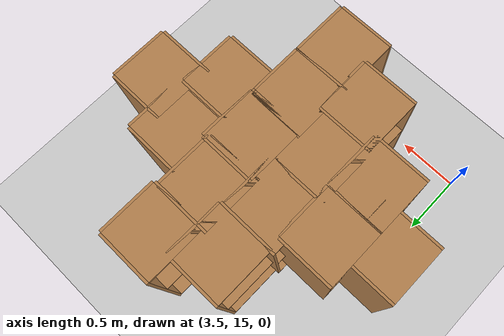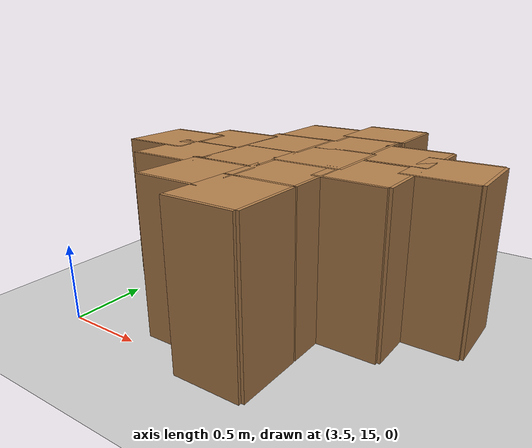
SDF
<sdf version="1.6">
 <world name="default">
  <light name="sun" type="directional">
   <pose>0 0 10 0 -0 0</pose>
   <diffuse>0.8 0.8 0.8 1</diffuse>
   <specular>0.2 0.2 0.2 1</specular>
   <attenuation>
    <range>1000</range>
    <constant>0.9</constant>
    <linear>0.01</linear>
    <quadratic>0.001</quadratic>
   </attenuation>
   <direction>-0.5 0.1 -0.9</direction>
  </light>
  <model name="ground_plane">
   <static>1</static>
   <link name="link">
    <collision name="collision">
     <geometry><plane><normal>0 0 1</normal><size>100 100</size></plane></geometry>
     <surface><friction><ode><mu>100</mu><mu2>50</mu2></ode></friction></surface>
    </collision>
    <visual name="visual">
     <cast_shadows>0</cast_shadows>
     <geometry><plane><normal>0 0 1</normal><size>100 100</size></plane></geometry>
     <material>
      <script><uri>file://media/materials/scripts/gazebo.material</uri><name>Gazebo/Grey</name></script>
     </material>
    </visual>
   </link>
  </model>
  <gravity>0 0 -9.8</gravity>
  <magnetic_field>6e-06 2.3e-05 -4.2e-05</magnetic_field>
  <atmosphere type="adiabatic"/>
  <physics name="default_physics" default="0" type="ode">
   <max_step_size>0.001</max_step_size>
   <real_time_factor>1</real_time_factor>
   <real_time_update_rate>1000</real_time_update_rate>
  </physics>
  <scene><ambient>0.4 0.4 0.4 1</ambient><background>0.7 0.7 0.7 1</background><shadows>1</shadows></scene>
  <audio><device>default</device></audio>
  <spherical_coordinates>
   <surface_model>EARTH_WGS84</surface_model>
   <latitude_deg>0</latitude_deg>
   <longitude_deg>0</longitude_deg>
   <elevation>0</elevation>
   <heading_deg>0</heading_deg>
  </spherical_coordinates>
  <model name="cabinet">
   <static>1</static>
   <link name="cabinet_bottom_plate">
    <inertial>
     <pose>0 0 -1 0 -0 0</pose>
     <inertia><ixx>2.05</ixx><ixy>0</ixy><ixz>0</ixz><iyy>2.05</iyy><iyz>0</iyz><izz>2.05</izz></inertia>
     <mass>25</mass>
    </inertial>
    <collision name="cabinet_bottom_plate_geom">
     <pose>0 0 0.01 0 -0 0</pose>
     <geometry><box><size>0.45 0.45 0.02</size></box></geometry>
    </collision>
    <visual name="cabinet_bottom_plate_geom_visual">
     <pose>0 0 0.01 0 -0 0</pose>
     <geometry><box><size>0.45 0.45 0.02</size></box></geometry>
     <material>
      <script><uri>file://media/materials/scripts/gazebo.material</uri><name>Gazebo/Wood</name></script>
     </material>
    </visual>
    <collision name="cabinet_bottom_plate_geom_cabinet_back_plate">
     <pose>0.235 0 0.51 0 -0 0</pose>
     <geometry><box><size>0.02 0.45 1.02</size></box></geometry>
    </collision>
    <visual name="cabinet_bottom_plate_geom_cabinet_back_plate_visual">
     <pose>0.235 0 0.51 0 -0 0</pose>
     <geometry><box><size>0.02 0.45 1.02</size></box></geometry>
     <material>
      <script><uri>file://media/materials/scripts/gazebo.material</uri><name>Gazebo/Wood</name></script>
     </material>
    </visual>
    <collision name="cabinet_bottom_plate_geom_cabinet_left_plate">
     <pose>0 0.235 0.51 0 -0 0</pose>
     <geometry><box><size>0.45 0.02 1.02</size></box></geometry>
    </collision>
    <visual name="cabinet_bottom_plate_geom_cabinet_left_plate_visual">
     <pose>0 0.235 0.51 0 -0 0</pose>
     <geometry><box><size>0.45 0.02 1.02</size></box></geometry>
     <material>
      <script><uri>file://media/materials/scripts/gazebo.material</uri><name>Gazebo/Wood</name></script>
     </material>
    </visual>
    <collision name="cabinet_bottom_plate_geom_cabinet_middle_plate">
     <pose>0 0 0.51 0 -0 0</pose>
     <geometry><box><size>0.45 0.45 0.02</size></box></geometry>
    </collision>
    <visual name="cabinet_bottom_plate_geom_cabinet_middle_plate_visual">
     <pose>0 0 0.51 0 -0 0</pose>
     <geometry><box><size>0.45 0.45 0.02</size></box></geometry>
     <material>
      <script><uri>file://media/materials/scripts/gazebo.material</uri><name>Gazebo/Wood</name></script>
     </material>
    </visual>
    <collision name="cabinet_bottom_plate_geom_cabinet_right_plate">
     <pose>0 -0.235 0.51 0 -0 0</pose>
     <geometry><box><size>0.45 0.02 1.02</size></box></geometry>
    </collision>
    <visual name="cabinet_bottom_plate_geom_cabinet_right_plate_visual">
     <pose>0 -0.235 0.51 0 -0 0</pose>
     <geometry><box><size>0.45 0.02 1.02</size></box></geometry>
     <material>
      <script><uri>file://media/materials/scripts/gazebo.material</uri><name>Gazebo/Wood</name></script>
     </material>
    </visual>
    <collision name="cabinet_bottom_plate_geom_cabinet_top_plate">
     <pose>0 0 1.01 0 -0 0</pose>
     <geometry><box><size>0.45 0.45 0.02</size></box></geometry>
    </collision>
    <visual name="cabinet_bottom_plate_geom_cabinet_top_plate_visual">
     <pose>0 0 1.01 0 -0 0</pose>
     <geometry><box><size>0.45 0.45 0.02</size></box></geometry>
     <material>
      <script><uri>file://media/materials/scripts/gazebo.material</uri><name>Gazebo/Wood</name></script>
     </material>
    </visual>
   </link>
   <pose>4.67443 15.1428 0 0 -0 0</pose>
  </model>
  <model name="cabinet_0">
   <static>1</static>
   <link name="cabinet_bottom_plate">
    <inertial>
     <pose>0 0 -1 0 -0 0</pose>
     <inertia><ixx>2.05</ixx><ixy>0</ixy><ixz>0</ixz><iyy>2.05</iyy><iyz>0</iyz><izz>2.05</izz></inertia>
     <mass>25</mass>
    </inertial>
    <collision name="cabinet_bottom_plate_geom">
     <pose>0 0 0.01 0 -0 0</pose>
     <geometry><box><size>0.45 0.45 0.02</size></box></geometry>
    </collision>
    <visual name="cabinet_bottom_plate_geom_visual">
     <pose>0 0 0.01 0 -0 0</pose>
     <geometry><box><size>0.45 0.45 0.02</size></box></geometry>
     <material>
      <script><uri>file://media/materials/scripts/gazebo.material</uri><name>Gazebo/Wood</name></script>
     </material>
    </visual>
    <collision name="cabinet_bottom_plate_geom_cabinet_back_plate">
     <pose>0.235 0 0.51 0 -0 0</pose>
     <geometry><box><size>0.02 0.45 1.02</size></box></geometry>
    </collision>
    <visual name="cabinet_bottom_plate_geom_cabinet_back_plate_visual">
     <pose>0.235 0 0.51 0 -0 0</pose>
     <geometry><box><size>0.02 0.45 1.02</size></box></geometry>
     <material>
      <script><uri>file://media/materials/scripts/gazebo.material</uri><name>Gazebo/Wood</name></script>
     </material>
    </visual>
    <collision name="cabinet_bottom_plate_geom_cabinet_left_plate">
     <pose>0 0.235 0.51 0 -0 0</pose>
     <geometry><box><size>0.45 0.02 1.02</size></box></geometry>
    </collision>
    <visual name="cabinet_bottom_plate_geom_cabinet_left_plate_visual">
     <pose>0 0.235 0.51 0 -0 0</pose>
     <geometry><box><size>0.45 0.02 1.02</size></box></geometry>
     <material>
      <script><uri>file://media/materials/scripts/gazebo.material</uri><name>Gazebo/Wood</name></script>
     </material>
    </visual>
    <collision name="cabinet_bottom_plate_geom_cabinet_middle_plate">
     <pose>0 0 0.51 0 -0 0</pose>
     <geometry><box><size>0.45 0.45 0.02</size></box></geometry>
    </collision>
    <visual name="cabinet_bottom_plate_geom_cabinet_middle_plate_visual">
     <pose>0 0 0.51 0 -0 0</pose>
     <geometry><box><size>0.45 0.45 0.02</size></box></geometry>
     <material>
      <script><uri>file://media/materials/scripts/gazebo.material</uri><name>Gazebo/Wood</name></script>
     </material>
    </visual>
    <collision name="cabinet_bottom_plate_geom_cabinet_right_plate">
     <pose>0 -0.235 0.51 0 -0 0</pose>
     <geometry><box><size>0.45 0.02 1.02</size></box></geometry>
    </collision>
    <visual name="cabinet_bottom_plate_geom_cabinet_right_plate_visual">
     <pose>0 -0.235 0.51 0 -0 0</pose>
     <geometry><box><size>0.45 0.02 1.02</size></box></geometry>
     <material>
      <script><uri>file://media/materials/scripts/gazebo.material</uri><name>Gazebo/Wood</name></script>
     </material>
    </visual>
    <collision name="cabinet_bottom_plate_geom_cabinet_top_plate">
     <pose>0 0 1.01 0 -0 0</pose>
     <geometry><box><size>0.45 0.45 0.02</size></box></geometry>
    </collision>
    <visual name="cabinet_bottom_plate_geom_cabinet_top_plate_visual">
     <pose>0 0 1.01 0 -0 0</pose>
     <geometry><box><size>0.45 0.45 0.02</size></box></geometry>
     <material>
      <script><uri>file://media/materials/scripts/gazebo.material</uri><name>Gazebo/Wood</name></script>
     </material>
    </visual>
   </link>
   <pose>4.67444 15.6052 0 0 -0 0</pose>
  </model>
  <model name="cabinet_1">
   <static>1</static>
   <link name="cabinet_bottom_plate">
    <inertial>
     <pose>0 0 -1 0 -0 0</pose>
     <inertia><ixx>2.05</ixx><ixy>0</ixy><ixz>0</ixz><iyy>2.05</iyy><iyz>0</iyz><izz>2.05</izz></inertia>
     <mass>25</mass>
    </inertial>
    <collision name="cabinet_bottom_plate_geom">
     <pose>0 0 0.01 0 -0 0</pose>
     <geometry><box><size>0.45 0.45 0.02</size></box></geometry>
    </collision>
    <visual name="cabinet_bottom_plate_geom_visual">
     <pose>0 0 0.01 0 -0 0</pose>
     <geometry><box><size>0.45 0.45 0.02</size></box></geometry>
     <material>
      <script><uri>file://media/materials/scripts/gazebo.material</uri><name>Gazebo/Wood</name></script>
     </material>
    </visual>
    <collision name="cabinet_bottom_plate_geom_cabinet_back_plate">
     <pose>0.235 0 0.51 0 -0 0</pose>
     <geometry><box><size>0.02 0.45 1.02</size></box></geometry>
    </collision>
    <visual name="cabinet_bottom_plate_geom_cabinet_back_plate_visual">
     <pose>0.235 0 0.51 0 -0 0</pose>
     <geometry><box><size>0.02 0.45 1.02</size></box></geometry>
     <material>
      <script><uri>file://media/materials/scripts/gazebo.material</uri><name>Gazebo/Wood</name></script>
     </material>
    </visual>
    <collision name="cabinet_bottom_plate_geom_cabinet_left_plate">
     <pose>0 0.235 0.51 0 -0 0</pose>
     <geometry><box><size>0.45 0.02 1.02</size></box></geometry>
    </collision>
    <visual name="cabinet_bottom_plate_geom_cabinet_left_plate_visual">
     <pose>0 0.235 0.51 0 -0 0</pose>
     <geometry><box><size>0.45 0.02 1.02</size></box></geometry>
     <material>
      <script><uri>file://media/materials/scripts/gazebo.material</uri><name>Gazebo/Wood</name></script>
     </material>
    </visual>
    <collision name="cabinet_bottom_plate_geom_cabinet_middle_plate">
     <pose>0 0 0.51 0 -0 0</pose>
     <geometry><box><size>0.45 0.45 0.02</size></box></geometry>
    </collision>
    <visual name="cabinet_bottom_plate_geom_cabinet_middle_plate_visual">
     <pose>0 0 0.51 0 -0 0</pose>
     <geometry><box><size>0.45 0.45 0.02</size></box></geometry>
     <material>
      <script><uri>file://media/materials/scripts/gazebo.material</uri><name>Gazebo/Wood</name></script>
     </material>
    </visual>
    <collision name="cabinet_bottom_plate_geom_cabinet_right_plate">
     <pose>0 -0.235 0.51 0 -0 0</pose>
     <geometry><box><size>0.45 0.02 1.02</size></box></geometry>
    </collision>
    <visual name="cabinet_bottom_plate_geom_cabinet_right_plate_visual">
     <pose>0 -0.235 0.51 0 -0 0</pose>
     <geometry><box><size>0.45 0.02 1.02</size></box></geometry>
     <material>
      <script><uri>file://media/materials/scripts/gazebo.material</uri><name>Gazebo/Wood</name></script>
     </material>
    </visual>
    <collision name="cabinet_bottom_plate_geom_cabinet_top_plate">
     <pose>0 0 1.01 0 -0 0</pose>
     <geometry><box><size>0.45 0.45 0.02</size></box></geometry>
    </collision>
    <visual name="cabinet_bottom_plate_geom_cabinet_top_plate_visual">
     <pose>0 0 1.01 0 -0 0</pose>
     <geometry><box><size>0.45 0.45 0.02</size></box></geometry>
     <material>
      <script><uri>file://media/materials/scripts/gazebo.material</uri><name>Gazebo/Wood</name></script>
     </material>
    </visual>
   </link>
   <pose>4.69143 16.0361 0 0 -0 0</pose>
  </model>
  <model name="cabinet_2">
   <static>1</static>
   <link name="cabinet_bottom_plate">
    <inertial>
     <pose>0 0 -1 0 -0 0</pose>
     <inertia><ixx>2.05</ixx><ixy>0</ixy><ixz>0</ixz><iyy>2.05</iyy><iyz>0</iyz><izz>2.05</izz></inertia>
     <mass>25</mass>
    </inertial>
    <collision name="cabinet_bottom_plate_geom">
     <pose>0 0 0.01 0 -0 0</pose>
     <geometry><box><size>0.45 0.45 0.02</size></box></geometry>
    </collision>
    <visual name="cabinet_bottom_plate_geom_visual">
     <pose>0 0 0.01 0 -0 0</pose>
     <geometry><box><size>0.45 0.45 0.02</size></box></geometry>
     <material>
      <script><uri>file://media/materials/scripts/gazebo.material</uri><name>Gazebo/Wood</name></script>
     </material>
    </visual>
    <collision name="cabinet_bottom_plate_geom_cabinet_back_plate">
     <pose>0.235 0 0.51 0 -0 0</pose>
     <geometry><box><size>0.02 0.45 1.02</size></box></geometry>
    </collision>
    <visual name="cabinet_bottom_plate_geom_cabinet_back_plate_visual">
     <pose>0.235 0 0.51 0 -0 0</pose>
     <geometry><box><size>0.02 0.45 1.02</size></box></geometry>
     <material>
      <script><uri>file://media/materials/scripts/gazebo.material</uri><name>Gazebo/Wood</name></script>
     </material>
    </visual>
    <collision name="cabinet_bottom_plate_geom_cabinet_left_plate">
     <pose>0 0.235 0.51 0 -0 0</pose>
     <geometry><box><size>0.45 0.02 1.02</size></box></geometry>
    </collision>
    <visual name="cabinet_bottom_plate_geom_cabinet_left_plate_visual">
     <pose>0 0.235 0.51 0 -0 0</pose>
     <geometry><box><size>0.45 0.02 1.02</size></box></geometry>
     <material>
      <script><uri>file://media/materials/scripts/gazebo.material</uri><name>Gazebo/Wood</name></script>
     </material>
    </visual>
    <collision name="cabinet_bottom_plate_geom_cabinet_middle_plate">
     <pose>0 0 0.51 0 -0 0</pose>
     <geometry><box><size>0.45 0.45 0.02</size></box></geometry>
    </collision>
    <visual name="cabinet_bottom_plate_geom_cabinet_middle_plate_visual">
     <pose>0 0 0.51 0 -0 0</pose>
     <geometry><box><size>0.45 0.45 0.02</size></box></geometry>
     <material>
      <script><uri>file://media/materials/scripts/gazebo.material</uri><name>Gazebo/Wood</name></script>
     </material>
    </visual>
    <collision name="cabinet_bottom_plate_geom_cabinet_right_plate">
     <pose>0 -0.235 0.51 0 -0 0</pose>
     <geometry><box><size>0.45 0.02 1.02</size></box></geometry>
    </collision>
    <visual name="cabinet_bottom_plate_geom_cabinet_right_plate_visual">
     <pose>0 -0.235 0.51 0 -0 0</pose>
     <geometry><box><size>0.45 0.02 1.02</size></box></geometry>
     <material>
      <script><uri>file://media/materials/scripts/gazebo.material</uri><name>Gazebo/Wood</name></script>
     </material>
    </visual>
    <collision name="cabinet_bottom_plate_geom_cabinet_top_plate">
     <pose>0 0 1.01 0 -0 0</pose>
     <geometry><box><size>0.45 0.45 0.02</size></box></geometry>
    </collision>
    <visual name="cabinet_bottom_plate_geom_cabinet_top_plate_visual">
     <pose>0 0 1.01 0 -0 0</pose>
     <geometry><box><size>0.45 0.45 0.02</size></box></geometry>
     <material>
      <script><uri>file://media/materials/scripts/gazebo.material</uri><name>Gazebo/Wood</name></script>
     </material>
    </visual>
   </link>
   <pose>4.66061 16.4653 0 0 -0 0</pose>
  </model>
  <model name="cabinet_3">
   <static>1</static>
   <link name="cabinet_bottom_plate">
    <inertial>
     <pose>0 0 -1 0 -0 0</pose>
     <inertia><ixx>2.05</ixx><ixy>0</ixy><ixz>0</ixz><iyy>2.05</iyy><iyz>0</iyz><izz>2.05</izz></inertia>
     <mass>25</mass>
    </inertial>
    <collision name="cabinet_bottom_plate_geom">
     <pose>0 0 0.01 0 -0 0</pose>
     <geometry><box><size>0.45 0.45 0.02</size></box></geometry>
    </collision>
    <visual name="cabinet_bottom_plate_geom_visual">
     <pose>0 0 0.01 0 -0 0</pose>
     <geometry><box><size>0.45 0.45 0.02</size></box></geometry>
     <material>
      <script><uri>file://media/materials/scripts/gazebo.material</uri><name>Gazebo/Wood</name></script>
     </material>
    </visual>
    <collision name="cabinet_bottom_plate_geom_cabinet_back_plate">
     <pose>0.235 0 0.51 0 -0 0</pose>
     <geometry><box><size>0.02 0.45 1.02</size></box></geometry>
    </collision>
    <visual name="cabinet_bottom_plate_geom_cabinet_back_plate_visual">
     <pose>0.235 0 0.51 0 -0 0</pose>
     <geometry><box><size>0.02 0.45 1.02</size></box></geometry>
     <material>
      <script><uri>file://media/materials/scripts/gazebo.material</uri><name>Gazebo/Wood</name></script>
     </material>
    </visual>
    <collision name="cabinet_bottom_plate_geom_cabinet_left_plate">
     <pose>0 0.235 0.51 0 -0 0</pose>
     <geometry><box><size>0.45 0.02 1.02</size></box></geometry>
    </collision>
    <visual name="cabinet_bottom_plate_geom_cabinet_left_plate_visual">
     <pose>0 0.235 0.51 0 -0 0</pose>
     <geometry><box><size>0.45 0.02 1.02</size></box></geometry>
     <material>
      <script><uri>file://media/materials/scripts/gazebo.material</uri><name>Gazebo/Wood</name></script>
     </material>
    </visual>
    <collision name="cabinet_bottom_plate_geom_cabinet_middle_plate">
     <pose>0 0 0.51 0 -0 0</pose>
     <geometry><box><size>0.45 0.45 0.02</size></box></geometry>
    </collision>
    <visual name="cabinet_bottom_plate_geom_cabinet_middle_plate_visual">
     <pose>0 0 0.51 0 -0 0</pose>
     <geometry><box><size>0.45 0.45 0.02</size></box></geometry>
     <material>
      <script><uri>file://media/materials/scripts/gazebo.material</uri><name>Gazebo/Wood</name></script>
     </material>
    </visual>
    <collision name="cabinet_bottom_plate_geom_cabinet_right_plate">
     <pose>0 -0.235 0.51 0 -0 0</pose>
     <geometry><box><size>0.45 0.02 1.02</size></box></geometry>
    </collision>
    <visual name="cabinet_bottom_plate_geom_cabinet_right_plate_visual">
     <pose>0 -0.235 0.51 0 -0 0</pose>
     <geometry><box><size>0.45 0.02 1.02</size></box></geometry>
     <material>
      <script><uri>file://media/materials/scripts/gazebo.material</uri><name>Gazebo/Wood</name></script>
     </material>
    </visual>
    <collision name="cabinet_bottom_plate_geom_cabinet_top_plate">
     <pose>0 0 1.01 0 -0 0</pose>
     <geometry><box><size>0.45 0.45 0.02</size></box></geometry>
    </collision>
    <visual name="cabinet_bottom_plate_geom_cabinet_top_plate_visual">
     <pose>0 0 1.01 0 -0 0</pose>
     <geometry><box><size>0.45 0.45 0.02</size></box></geometry>
     <material>
      <script><uri>file://media/materials/scripts/gazebo.material</uri><name>Gazebo/Wood</name></script>
     </material>
    </visual>
   </link>
   <pose>4.6924 16.9287 0 0 -0 0</pose>
  </model>
  <model name="cabinet_4">
   <static>1</static>
   <link name="cabinet_bottom_plate">
    <inertial>
     <pose>0 0 -1 0 -0 0</pose>
     <inertia><ixx>2.05</ixx><ixy>0</ixy><ixz>0</ixz><iyy>2.05</iyy><iyz>0</iyz><izz>2.05</izz></inertia>
     <mass>25</mass>
    </inertial>
    <collision name="cabinet_bottom_plate_geom">
     <pose>0 0 0.01 0 -0 0</pose>
     <geometry><box><size>0.45 0.45 0.02</size></box></geometry>
    </collision>
    <visual name="cabinet_bottom_plate_geom_visual">
     <pose>0 0 0.01 0 -0 0</pose>
     <geometry><box><size>0.45 0.45 0.02</size></box></geometry>
     <material>
      <script><uri>file://media/materials/scripts/gazebo.material</uri><name>Gazebo/Wood</name></script>
     </material>
    </visual>
    <collision name="cabinet_bottom_plate_geom_cabinet_back_plate">
     <pose>0.235 0 0.51 0 -0 0</pose>
     <geometry><box><size>0.02 0.45 1.02</size></box></geometry>
    </collision>
    <visual name="cabinet_bottom_plate_geom_cabinet_back_plate_visual">
     <pose>0.235 0 0.51 0 -0 0</pose>
     <geometry><box><size>0.02 0.45 1.02</size></box></geometry>
     <material>
      <script><uri>file://media/materials/scripts/gazebo.material</uri><name>Gazebo/Wood</name></script>
     </material>
    </visual>
    <collision name="cabinet_bottom_plate_geom_cabinet_left_plate">
     <pose>0 0.235 0.51 0 -0 0</pose>
     <geometry><box><size>0.45 0.02 1.02</size></box></geometry>
    </collision>
    <visual name="cabinet_bottom_plate_geom_cabinet_left_plate_visual">
     <pose>0 0.235 0.51 0 -0 0</pose>
     <geometry><box><size>0.45 0.02 1.02</size></box></geometry>
     <material>
      <script><uri>file://media/materials/scripts/gazebo.material</uri><name>Gazebo/Wood</name></script>
     </material>
    </visual>
    <collision name="cabinet_bottom_plate_geom_cabinet_middle_plate">
     <pose>0 0 0.51 0 -0 0</pose>
     <geometry><box><size>0.45 0.45 0.02</size></box></geometry>
    </collision>
    <visual name="cabinet_bottom_plate_geom_cabinet_middle_plate_visual">
     <pose>0 0 0.51 0 -0 0</pose>
     <geometry><box><size>0.45 0.45 0.02</size></box></geometry>
     <material>
      <script><uri>file://media/materials/scripts/gazebo.material</uri><name>Gazebo/Wood</name></script>
     </material>
    </visual>
    <collision name="cabinet_bottom_plate_geom_cabinet_right_plate">
     <pose>0 -0.235 0.51 0 -0 0</pose>
     <geometry><box><size>0.45 0.02 1.02</size></box></geometry>
    </collision>
    <visual name="cabinet_bottom_plate_geom_cabinet_right_plate_visual">
     <pose>0 -0.235 0.51 0 -0 0</pose>
     <geometry><box><size>0.45 0.02 1.02</size></box></geometry>
     <material>
      <script><uri>file://media/materials/scripts/gazebo.material</uri><name>Gazebo/Wood</name></script>
     </material>
    </visual>
    <collision name="cabinet_bottom_plate_geom_cabinet_top_plate">
     <pose>0 0 1.01 0 -0 0</pose>
     <geometry><box><size>0.45 0.45 0.02</size></box></geometry>
    </collision>
    <visual name="cabinet_bottom_plate_geom_cabinet_top_plate_visual">
     <pose>0 0 1.01 0 -0 0</pose>
     <geometry><box><size>0.45 0.45 0.02</size></box></geometry>
     <material>
      <script><uri>file://media/materials/scripts/gazebo.material</uri><name>Gazebo/Wood</name></script>
     </material>
    </visual>
   </link>
   <pose>4.26889 15.3522 0 0 -0 0</pose>
  </model>
  <model name="cabinet_5">
   <static>1</static>
   <link name="cabinet_bottom_plate">
    <inertial>
     <pose>0 0 -1 0 -0 0</pose>
     <inertia><ixx>2.05</ixx><ixy>0</ixy><ixz>0</ixz><iyy>2.05</iyy><iyz>0</iyz><izz>2.05</izz></inertia>
     <mass>25</mass>
    </inertial>
    <collision name="cabinet_bottom_plate_geom">
     <pose>0 0 0.01 0 -0 0</pose>
     <geometry><box><size>0.45 0.45 0.02</size></box></geometry>
    </collision>
    <visual name="cabinet_bottom_plate_geom_visual">
     <pose>0 0 0.01 0 -0 0</pose>
     <geometry><box><size>0.45 0.45 0.02</size></box></geometry>
     <material>
      <script><uri>file://media/materials/scripts/gazebo.material</uri><name>Gazebo/Wood</name></script>
     </material>
    </visual>
    <collision name="cabinet_bottom_plate_geom_cabinet_back_plate">
     <pose>0.235 0 0.51 0 -0 0</pose>
     <geometry><box><size>0.02 0.45 1.02</size></box></geometry>
    </collision>
    <visual name="cabinet_bottom_plate_geom_cabinet_back_plate_visual">
     <pose>0.235 0 0.51 0 -0 0</pose>
     <geometry><box><size>0.02 0.45 1.02</size></box></geometry>
     <material>
      <script><uri>file://media/materials/scripts/gazebo.material</uri><name>Gazebo/Wood</name></script>
     </material>
    </visual>
    <collision name="cabinet_bottom_plate_geom_cabinet_left_plate">
     <pose>0 0.235 0.51 0 -0 0</pose>
     <geometry><box><size>0.45 0.02 1.02</size></box></geometry>
    </collision>
    <visual name="cabinet_bottom_plate_geom_cabinet_left_plate_visual">
     <pose>0 0.235 0.51 0 -0 0</pose>
     <geometry><box><size>0.45 0.02 1.02</size></box></geometry>
     <material>
      <script><uri>file://media/materials/scripts/gazebo.material</uri><name>Gazebo/Wood</name></script>
     </material>
    </visual>
    <collision name="cabinet_bottom_plate_geom_cabinet_middle_plate">
     <pose>0 0 0.51 0 -0 0</pose>
     <geometry><box><size>0.45 0.45 0.02</size></box></geometry>
    </collision>
    <visual name="cabinet_bottom_plate_geom_cabinet_middle_plate_visual">
     <pose>0 0 0.51 0 -0 0</pose>
     <geometry><box><size>0.45 0.45 0.02</size></box></geometry>
     <material>
      <script><uri>file://media/materials/scripts/gazebo.material</uri><name>Gazebo/Wood</name></script>
     </material>
    </visual>
    <collision name="cabinet_bottom_plate_geom_cabinet_right_plate">
     <pose>0 -0.235 0.51 0 -0 0</pose>
     <geometry><box><size>0.45 0.02 1.02</size></box></geometry>
    </collision>
    <visual name="cabinet_bottom_plate_geom_cabinet_right_plate_visual">
     <pose>0 -0.235 0.51 0 -0 0</pose>
     <geometry><box><size>0.45 0.02 1.02</size></box></geometry>
     <material>
      <script><uri>file://media/materials/scripts/gazebo.material</uri><name>Gazebo/Wood</name></script>
     </material>
    </visual>
    <collision name="cabinet_bottom_plate_geom_cabinet_top_plate">
     <pose>0 0 1.01 0 -0 0</pose>
     <geometry><box><size>0.45 0.45 0.02</size></box></geometry>
    </collision>
    <visual name="cabinet_bottom_plate_geom_cabinet_top_plate_visual">
     <pose>0 0 1.01 0 -0 0</pose>
     <geometry><box><size>0.45 0.45 0.02</size></box></geometry>
     <material>
      <script><uri>file://media/materials/scripts/gazebo.material</uri><name>Gazebo/Wood</name></script>
     </material>
    </visual>
   </link>
   <pose>4.25261 15.8221 0 0 -0 0</pose>
  </model>
  <model name="cabinet_6">
   <static>1</static>
   <link name="cabinet_bottom_plate">
    <inertial>
     <pose>0 0 -1 0 -0 0</pose>
     <inertia><ixx>2.05</ixx><ixy>0</ixy><ixz>0</ixz><iyy>2.05</iyy><iyz>0</iyz><izz>2.05</izz></inertia>
     <mass>25</mass>
    </inertial>
    <collision name="cabinet_bottom_plate_geom">
     <pose>0 0 0.01 0 -0 0</pose>
     <geometry><box><size>0.45 0.45 0.02</size></box></geometry>
    </collision>
    <visual name="cabinet_bottom_plate_geom_visual">
     <pose>0 0 0.01 0 -0 0</pose>
     <geometry><box><size>0.45 0.45 0.02</size></box></geometry>
     <material>
      <script><uri>file://media/materials/scripts/gazebo.material</uri><name>Gazebo/Wood</name></script>
     </material>
    </visual>
    <collision name="cabinet_bottom_plate_geom_cabinet_back_plate">
     <pose>0.235 0 0.51 0 -0 0</pose>
     <geometry><box><size>0.02 0.45 1.02</size></box></geometry>
    </collision>
    <visual name="cabinet_bottom_plate_geom_cabinet_back_plate_visual">
     <pose>0.235 0 0.51 0 -0 0</pose>
     <geometry><box><size>0.02 0.45 1.02</size></box></geometry>
     <material>
      <script><uri>file://media/materials/scripts/gazebo.material</uri><name>Gazebo/Wood</name></script>
     </material>
    </visual>
    <collision name="cabinet_bottom_plate_geom_cabinet_left_plate">
     <pose>0 0.235 0.51 0 -0 0</pose>
     <geometry><box><size>0.45 0.02 1.02</size></box></geometry>
    </collision>
    <visual name="cabinet_bottom_plate_geom_cabinet_left_plate_visual">
     <pose>0 0.235 0.51 0 -0 0</pose>
     <geometry><box><size>0.45 0.02 1.02</size></box></geometry>
     <material>
      <script><uri>file://media/materials/scripts/gazebo.material</uri><name>Gazebo/Wood</name></script>
     </material>
    </visual>
    <collision name="cabinet_bottom_plate_geom_cabinet_middle_plate">
     <pose>0 0 0.51 0 -0 0</pose>
     <geometry><box><size>0.45 0.45 0.02</size></box></geometry>
    </collision>
    <visual name="cabinet_bottom_plate_geom_cabinet_middle_plate_visual">
     <pose>0 0 0.51 0 -0 0</pose>
     <geometry><box><size>0.45 0.45 0.02</size></box></geometry>
     <material>
      <script><uri>file://media/materials/scripts/gazebo.material</uri><name>Gazebo/Wood</name></script>
     </material>
    </visual>
    <collision name="cabinet_bottom_plate_geom_cabinet_right_plate">
     <pose>0 -0.235 0.51 0 -0 0</pose>
     <geometry><box><size>0.45 0.02 1.02</size></box></geometry>
    </collision>
    <visual name="cabinet_bottom_plate_geom_cabinet_right_plate_visual">
     <pose>0 -0.235 0.51 0 -0 0</pose>
     <geometry><box><size>0.45 0.02 1.02</size></box></geometry>
     <material>
      <script><uri>file://media/materials/scripts/gazebo.material</uri><name>Gazebo/Wood</name></script>
     </material>
    </visual>
    <collision name="cabinet_bottom_plate_geom_cabinet_top_plate">
     <pose>0 0 1.01 0 -0 0</pose>
     <geometry><box><size>0.45 0.45 0.02</size></box></geometry>
    </collision>
    <visual name="cabinet_bottom_plate_geom_cabinet_top_plate_visual">
     <pose>0 0 1.01 0 -0 0</pose>
     <geometry><box><size>0.45 0.45 0.02</size></box></geometry>
     <material>
      <script><uri>file://media/materials/scripts/gazebo.material</uri><name>Gazebo/Wood</name></script>
     </material>
    </visual>
   </link>
   <pose>4.2531 16.2687 0 0 -0 0</pose>
  </model>
  <model name="cabinet_7">
   <static>1</static>
   <link name="cabinet_bottom_plate">
    <inertial>
     <pose>0 0 -1 0 -0 0</pose>
     <inertia><ixx>2.05</ixx><ixy>0</ixy><ixz>0</ixz><iyy>2.05</iyy><iyz>0</iyz><izz>2.05</izz></inertia>
     <mass>25</mass>
    </inertial>
    <collision name="cabinet_bottom_plate_geom">
     <pose>0 0 0.01 0 -0 0</pose>
     <geometry><box><size>0.45 0.45 0.02</size></box></geometry>
    </collision>
    <visual name="cabinet_bottom_plate_geom_visual">
     <pose>0 0 0.01 0 -0 0</pose>
     <geometry><box><size>0.45 0.45 0.02</size></box></geometry>
     <material>
      <script><uri>file://media/materials/scripts/gazebo.material</uri><name>Gazebo/Wood</name></script>
     </material>
    </visual>
    <collision name="cabinet_bottom_plate_geom_cabinet_back_plate">
     <pose>0.235 0 0.51 0 -0 0</pose>
     <geometry><box><size>0.02 0.45 1.02</size></box></geometry>
    </collision>
    <visual name="cabinet_bottom_plate_geom_cabinet_back_plate_visual">
     <pose>0.235 0 0.51 0 -0 0</pose>
     <geometry><box><size>0.02 0.45 1.02</size></box></geometry>
     <material>
      <script><uri>file://media/materials/scripts/gazebo.material</uri><name>Gazebo/Wood</name></script>
     </material>
    </visual>
    <collision name="cabinet_bottom_plate_geom_cabinet_left_plate">
     <pose>0 0.235 0.51 0 -0 0</pose>
     <geometry><box><size>0.45 0.02 1.02</size></box></geometry>
    </collision>
    <visual name="cabinet_bottom_plate_geom_cabinet_left_plate_visual">
     <pose>0 0.235 0.51 0 -0 0</pose>
     <geometry><box><size>0.45 0.02 1.02</size></box></geometry>
     <material>
      <script><uri>file://media/materials/scripts/gazebo.material</uri><name>Gazebo/Wood</name></script>
     </material>
    </visual>
    <collision name="cabinet_bottom_plate_geom_cabinet_middle_plate">
     <pose>0 0 0.51 0 -0 0</pose>
     <geometry><box><size>0.45 0.45 0.02</size></box></geometry>
    </collision>
    <visual name="cabinet_bottom_plate_geom_cabinet_middle_plate_visual">
     <pose>0 0 0.51 0 -0 0</pose>
     <geometry><box><size>0.45 0.45 0.02</size></box></geometry>
     <material>
      <script><uri>file://media/materials/scripts/gazebo.material</uri><name>Gazebo/Wood</name></script>
     </material>
    </visual>
    <collision name="cabinet_bottom_plate_geom_cabinet_right_plate">
     <pose>0 -0.235 0.51 0 -0 0</pose>
     <geometry><box><size>0.45 0.02 1.02</size></box></geometry>
    </collision>
    <visual name="cabinet_bottom_plate_geom_cabinet_right_plate_visual">
     <pose>0 -0.235 0.51 0 -0 0</pose>
     <geometry><box><size>0.45 0.02 1.02</size></box></geometry>
     <material>
      <script><uri>file://media/materials/scripts/gazebo.material</uri><name>Gazebo/Wood</name></script>
     </material>
    </visual>
    <collision name="cabinet_bottom_plate_geom_cabinet_top_plate">
     <pose>0 0 1.01 0 -0 0</pose>
     <geometry><box><size>0.45 0.45 0.02</size></box></geometry>
    </collision>
    <visual name="cabinet_bottom_plate_geom_cabinet_top_plate_visual">
     <pose>0 0 1.01 0 -0 0</pose>
     <geometry><box><size>0.45 0.45 0.02</size></box></geometry>
     <material>
      <script><uri>file://media/materials/scripts/gazebo.material</uri><name>Gazebo/Wood</name></script>
     </material>
    </visual>
   </link>
   <pose>4.28483 16.7318 0 0 -0 0</pose>
  </model>
  <model name="cabinet_8">
   <static>1</static>
   <link name="cabinet_bottom_plate">
    <inertial>
     <pose>0 0 -1 0 -0 0</pose>
     <inertia><ixx>2.05</ixx><ixy>0</ixy><ixz>0</ixz><iyy>2.05</iyy><iyz>0</iyz><izz>2.05</izz></inertia>
     <mass>25</mass>
    </inertial>
    <collision name="cabinet_bottom_plate_geom">
     <pose>0 0 0.01 0 -0 0</pose>
     <geometry><box><size>0.45 0.45 0.02</size></box></geometry>
    </collision>
    <visual name="cabinet_bottom_plate_geom_visual">
     <pose>0 0 0.01 0 -0 0</pose>
     <geometry><box><size>0.45 0.45 0.02</size></box></geometry>
     <material>
      <script><uri>file://media/materials/scripts/gazebo.material</uri><name>Gazebo/Wood</name></script>
     </material>
    </visual>
    <collision name="cabinet_bottom_plate_geom_cabinet_back_plate">
     <pose>0.235 0 0.51 0 -0 0</pose>
     <geometry><box><size>0.02 0.45 1.02</size></box></geometry>
    </collision>
    <visual name="cabinet_bottom_plate_geom_cabinet_back_plate_visual">
     <pose>0.235 0 0.51 0 -0 0</pose>
     <geometry><box><size>0.02 0.45 1.02</size></box></geometry>
     <material>
      <script><uri>file://media/materials/scripts/gazebo.material</uri><name>Gazebo/Wood</name></script>
     </material>
    </visual>
    <collision name="cabinet_bottom_plate_geom_cabinet_left_plate">
     <pose>0 0.235 0.51 0 -0 0</pose>
     <geometry><box><size>0.45 0.02 1.02</size></box></geometry>
    </collision>
    <visual name="cabinet_bottom_plate_geom_cabinet_left_plate_visual">
     <pose>0 0.235 0.51 0 -0 0</pose>
     <geometry><box><size>0.45 0.02 1.02</size></box></geometry>
     <material>
      <script><uri>file://media/materials/scripts/gazebo.material</uri><name>Gazebo/Wood</name></script>
     </material>
    </visual>
    <collision name="cabinet_bottom_plate_geom_cabinet_middle_plate">
     <pose>0 0 0.51 0 -0 0</pose>
     <geometry><box><size>0.45 0.45 0.02</size></box></geometry>
    </collision>
    <visual name="cabinet_bottom_plate_geom_cabinet_middle_plate_visual">
     <pose>0 0 0.51 0 -0 0</pose>
     <geometry><box><size>0.45 0.45 0.02</size></box></geometry>
     <material>
      <script><uri>file://media/materials/scripts/gazebo.material</uri><name>Gazebo/Wood</name></script>
     </material>
    </visual>
    <collision name="cabinet_bottom_plate_geom_cabinet_right_plate">
     <pose>0 -0.235 0.51 0 -0 0</pose>
     <geometry><box><size>0.45 0.02 1.02</size></box></geometry>
    </collision>
    <visual name="cabinet_bottom_plate_geom_cabinet_right_plate_visual">
     <pose>0 -0.235 0.51 0 -0 0</pose>
     <geometry><box><size>0.45 0.02 1.02</size></box></geometry>
     <material>
      <script><uri>file://media/materials/scripts/gazebo.material</uri><name>Gazebo/Wood</name></script>
     </material>
    </visual>
    <collision name="cabinet_bottom_plate_geom_cabinet_top_plate">
     <pose>0 0 1.01 0 -0 0</pose>
     <geometry><box><size>0.45 0.45 0.02</size></box></geometry>
    </collision>
    <visual name="cabinet_bottom_plate_geom_cabinet_top_plate_visual">
     <pose>0 0 1.01 0 -0 0</pose>
     <geometry><box><size>0.45 0.45 0.02</size></box></geometry>
     <material>
      <script><uri>file://media/materials/scripts/gazebo.material</uri><name>Gazebo/Wood</name></script>
     </material>
    </visual>
   </link>
   <pose>3.85811 15.713 0 0 -0 0</pose>
  </model>
  <model name="cabinet_9">
   <static>1</static>
   <link name="cabinet_bottom_plate">
    <inertial>
     <pose>0 0 -1 0 -0 0</pose>
     <inertia><ixx>2.05</ixx><ixy>0</ixy><ixz>0</ixz><iyy>2.05</iyy><iyz>0</iyz><izz>2.05</izz></inertia>
     <mass>25</mass>
    </inertial>
    <collision name="cabinet_bottom_plate_geom">
     <pose>0 0 0.01 0 -0 0</pose>
     <geometry><box><size>0.45 0.45 0.02</size></box></geometry>
    </collision>
    <visual name="cabinet_bottom_plate_geom_visual">
     <pose>0 0 0.01 0 -0 0</pose>
     <geometry><box><size>0.45 0.45 0.02</size></box></geometry>
     <material>
      <script><uri>file://media/materials/scripts/gazebo.material</uri><name>Gazebo/Wood</name></script>
     </material>
    </visual>
    <collision name="cabinet_bottom_plate_geom_cabinet_back_plate">
     <pose>0.235 0 0.51 0 -0 0</pose>
     <geometry><box><size>0.02 0.45 1.02</size></box></geometry>
    </collision>
    <visual name="cabinet_bottom_plate_geom_cabinet_back_plate_visual">
     <pose>0.235 0 0.51 0 -0 0</pose>
     <geometry><box><size>0.02 0.45 1.02</size></box></geometry>
     <material>
      <script><uri>file://media/materials/scripts/gazebo.material</uri><name>Gazebo/Wood</name></script>
     </material>
    </visual>
    <collision name="cabinet_bottom_plate_geom_cabinet_left_plate">
     <pose>0 0.235 0.51 0 -0 0</pose>
     <geometry><box><size>0.45 0.02 1.02</size></box></geometry>
    </collision>
    <visual name="cabinet_bottom_plate_geom_cabinet_left_plate_visual">
     <pose>0 0.235 0.51 0 -0 0</pose>
     <geometry><box><size>0.45 0.02 1.02</size></box></geometry>
     <material>
      <script><uri>file://media/materials/scripts/gazebo.material</uri><name>Gazebo/Wood</name></script>
     </material>
    </visual>
    <collision name="cabinet_bottom_plate_geom_cabinet_middle_plate">
     <pose>0 0 0.51 0 -0 0</pose>
     <geometry><box><size>0.45 0.45 0.02</size></box></geometry>
    </collision>
    <visual name="cabinet_bottom_plate_geom_cabinet_middle_plate_visual">
     <pose>0 0 0.51 0 -0 0</pose>
     <geometry><box><size>0.45 0.45 0.02</size></box></geometry>
     <material>
      <script><uri>file://media/materials/scripts/gazebo.material</uri><name>Gazebo/Wood</name></script>
     </material>
    </visual>
    <collision name="cabinet_bottom_plate_geom_cabinet_right_plate">
     <pose>0 -0.235 0.51 0 -0 0</pose>
     <geometry><box><size>0.45 0.02 1.02</size></box></geometry>
    </collision>
    <visual name="cabinet_bottom_plate_geom_cabinet_right_plate_visual">
     <pose>0 -0.235 0.51 0 -0 0</pose>
     <geometry><box><size>0.45 0.02 1.02</size></box></geometry>
     <material>
      <script><uri>file://media/materials/scripts/gazebo.material</uri><name>Gazebo/Wood</name></script>
     </material>
    </visual>
    <collision name="cabinet_bottom_plate_geom_cabinet_top_plate">
     <pose>0 0 1.01 0 -0 0</pose>
     <geometry><box><size>0.45 0.45 0.02</size></box></geometry>
    </collision>
    <visual name="cabinet_bottom_plate_geom_cabinet_top_plate_visual">
     <pose>0 0 1.01 0 -0 0</pose>
     <geometry><box><size>0.45 0.45 0.02</size></box></geometry>
     <material>
      <script><uri>file://media/materials/scripts/gazebo.material</uri><name>Gazebo/Wood</name></script>
     </material>
    </visual>
   </link>
   <pose>3.85794 16.175 0 0 -0 0</pose>
  </model>
  <model name="cabinet_10">
   <static>1</static>
   <link name="cabinet_bottom_plate">
    <inertial>
     <pose>0 0 -1 0 -0 0</pose>
     <inertia><ixx>2.05</ixx><ixy>0</ixy><ixz>0</ixz><iyy>2.05</iyy><iyz>0</iyz><izz>2.05</izz></inertia>
     <mass>25</mass>
    </inertial>
    <collision name="cabinet_bottom_plate_geom">
     <pose>0 0 0.01 0 -0 0</pose>
     <geometry><box><size>0.45 0.45 0.02</size></box></geometry>
    </collision>
    <visual name="cabinet_bottom_plate_geom_visual">
     <pose>0 0 0.01 0 -0 0</pose>
     <geometry><box><size>0.45 0.45 0.02</size></box></geometry>
     <material>
      <script><uri>file://media/materials/scripts/gazebo.material</uri><name>Gazebo/Wood</name></script>
     </material>
    </visual>
    <collision name="cabinet_bottom_plate_geom_cabinet_back_plate">
     <pose>0.235 0 0.51 0 -0 0</pose>
     <geometry><box><size>0.02 0.45 1.02</size></box></geometry>
    </collision>
    <visual name="cabinet_bottom_plate_geom_cabinet_back_plate_visual">
     <pose>0.235 0 0.51 0 -0 0</pose>
     <geometry><box><size>0.02 0.45 1.02</size></box></geometry>
     <material>
      <script><uri>file://media/materials/scripts/gazebo.material</uri><name>Gazebo/Wood</name></script>
     </material>
    </visual>
    <collision name="cabinet_bottom_plate_geom_cabinet_left_plate">
     <pose>0 0.235 0.51 0 -0 0</pose>
     <geometry><box><size>0.45 0.02 1.02</size></box></geometry>
    </collision>
    <visual name="cabinet_bottom_plate_geom_cabinet_left_plate_visual">
     <pose>0 0.235 0.51 0 -0 0</pose>
     <geometry><box><size>0.45 0.02 1.02</size></box></geometry>
     <material>
      <script><uri>file://media/materials/scripts/gazebo.material</uri><name>Gazebo/Wood</name></script>
     </material>
    </visual>
    <collision name="cabinet_bottom_plate_geom_cabinet_middle_plate">
     <pose>0 0 0.51 0 -0 0</pose>
     <geometry><box><size>0.45 0.45 0.02</size></box></geometry>
    </collision>
    <visual name="cabinet_bottom_plate_geom_cabinet_middle_plate_visual">
     <pose>0 0 0.51 0 -0 0</pose>
     <geometry><box><size>0.45 0.45 0.02</size></box></geometry>
     <material>
      <script><uri>file://media/materials/scripts/gazebo.material</uri><name>Gazebo/Wood</name></script>
     </material>
    </visual>
    <collision name="cabinet_bottom_plate_geom_cabinet_right_plate">
     <pose>0 -0.235 0.51 0 -0 0</pose>
     <geometry><box><size>0.45 0.02 1.02</size></box></geometry>
    </collision>
    <visual name="cabinet_bottom_plate_geom_cabinet_right_plate_visual">
     <pose>0 -0.235 0.51 0 -0 0</pose>
     <geometry><box><size>0.45 0.02 1.02</size></box></geometry>
     <material>
      <script><uri>file://media/materials/scripts/gazebo.material</uri><name>Gazebo/Wood</name></script>
     </material>
    </visual>
    <collision name="cabinet_bottom_plate_geom_cabinet_top_plate">
     <pose>0 0 1.01 0 -0 0</pose>
     <geometry><box><size>0.45 0.45 0.02</size></box></geometry>
    </collision>
    <visual name="cabinet_bottom_plate_geom_cabinet_top_plate_visual">
     <pose>0 0 1.01 0 -0 0</pose>
     <geometry><box><size>0.45 0.45 0.02</size></box></geometry>
     <material>
      <script><uri>file://media/materials/scripts/gazebo.material</uri><name>Gazebo/Wood</name></script>
     </material>
    </visual>
   </link>
   <pose>3.51388 15.9883 0 0 -0 0</pose>
  </model>
  <model name="cabinet_11">
   <static>1</static>
   <link name="cabinet_bottom_plate">
    <inertial>
     <pose>0 0 -1 0 -0 0</pose>
     <inertia><ixx>2.05</ixx><ixy>0</ixy><ixz>0</ixz><iyy>2.05</iyy><iyz>0</iyz><izz>2.05</izz></inertia>
     <mass>25</mass>
    </inertial>
    <collision name="cabinet_bottom_plate_geom">
     <pose>0 0 0.01 0 -0 0</pose>
     <geometry><box><size>0.45 0.45 0.02</size></box></geometry>
    </collision>
    <visual name="cabinet_bottom_plate_geom_visual">
     <pose>0 0 0.01 0 -0 0</pose>
     <geometry><box><size>0.45 0.45 0.02</size></box></geometry>
     <material>
      <script><uri>file://media/materials/scripts/gazebo.material</uri><name>Gazebo/Wood</name></script>
     </material>
    </visual>
    <collision name="cabinet_bottom_plate_geom_cabinet_back_plate">
     <pose>0.235 0 0.51 0 -0 0</pose>
     <geometry><box><size>0.02 0.45 1.02</size></box></geometry>
    </collision>
    <visual name="cabinet_bottom_plate_geom_cabinet_back_plate_visual">
     <pose>0.235 0 0.51 0 -0 0</pose>
     <geometry><box><size>0.02 0.45 1.02</size></box></geometry>
     <material>
      <script><uri>file://media/materials/scripts/gazebo.material</uri><name>Gazebo/Wood</name></script>
     </material>
    </visual>
    <collision name="cabinet_bottom_plate_geom_cabinet_left_plate">
     <pose>0 0.235 0.51 0 -0 0</pose>
     <geometry><box><size>0.45 0.02 1.02</size></box></geometry>
    </collision>
    <visual name="cabinet_bottom_plate_geom_cabinet_left_plate_visual">
     <pose>0 0.235 0.51 0 -0 0</pose>
     <geometry><box><size>0.45 0.02 1.02</size></box></geometry>
     <material>
      <script><uri>file://media/materials/scripts/gazebo.material</uri><name>Gazebo/Wood</name></script>
     </material>
    </visual>
    <collision name="cabinet_bottom_plate_geom_cabinet_middle_plate">
     <pose>0 0 0.51 0 -0 0</pose>
     <geometry><box><size>0.45 0.45 0.02</size></box></geometry>
    </collision>
    <visual name="cabinet_bottom_plate_geom_cabinet_middle_plate_visual">
     <pose>0 0 0.51 0 -0 0</pose>
     <geometry><box><size>0.45 0.45 0.02</size></box></geometry>
     <material>
      <script><uri>file://media/materials/scripts/gazebo.material</uri><name>Gazebo/Wood</name></script>
     </material>
    </visual>
    <collision name="cabinet_bottom_plate_geom_cabinet_right_plate">
     <pose>0 -0.235 0.51 0 -0 0</pose>
     <geometry><box><size>0.45 0.02 1.02</size></box></geometry>
    </collision>
    <visual name="cabinet_bottom_plate_geom_cabinet_right_plate_visual">
     <pose>0 -0.235 0.51 0 -0 0</pose>
     <geometry><box><size>0.45 0.02 1.02</size></box></geometry>
     <material>
      <script><uri>file://media/materials/scripts/gazebo.material</uri><name>Gazebo/Wood</name></script>
     </material>
    </visual>
    <collision name="cabinet_bottom_plate_geom_cabinet_top_plate">
     <pose>0 0 1.01 0 -0 0</pose>
     <geometry><box><size>0.45 0.45 0.02</size></box></geometry>
    </collision>
    <visual name="cabinet_bottom_plate_geom_cabinet_top_plate_visual">
     <pose>0 0 1.01 0 -0 0</pose>
     <geometry><box><size>0.45 0.45 0.02</size></box></geometry>
     <material>
      <script><uri>file://media/materials/scripts/gazebo.material</uri><name>Gazebo/Wood</name></script>
     </material>
    </visual>
   </link>
   <pose>5.08031 15.851 0 0 -0 0</pose>
  </model>
  <model name="cabinet_12">
   <static>1</static>
   <link name="cabinet_bottom_plate">
    <inertial>
     <pose>0 0 -1 0 -0 0</pose>
     <inertia><ixx>2.05</ixx><ixy>0</ixy><ixz>0</ixz><iyy>2.05</iyy><iyz>0</iyz><izz>2.05</izz></inertia>
     <mass>25</mass>
    </inertial>
    <collision name="cabinet_bottom_plate_geom">
     <pose>0 0 0.01 0 -0 0</pose>
     <geometry><box><size>0.45 0.45 0.02</size></box></geometry>
    </collision>
    <visual name="cabinet_bottom_plate_geom_visual">
     <pose>0 0 0.01 0 -0 0</pose>
     <geometry><box><size>0.45 0.45 0.02</size></box></geometry>
     <material>
      <script><uri>file://media/materials/scripts/gazebo.material</uri><name>Gazebo/Wood</name></script>
     </material>
    </visual>
    <collision name="cabinet_bottom_plate_geom_cabinet_back_plate">
     <pose>0.235 0 0.51 0 -0 0</pose>
     <geometry><box><size>0.02 0.45 1.02</size></box></geometry>
    </collision>
    <visual name="cabinet_bottom_plate_geom_cabinet_back_plate_visual">
     <pose>0.235 0 0.51 0 -0 0</pose>
     <geometry><box><size>0.02 0.45 1.02</size></box></geometry>
     <material>
      <script><uri>file://media/materials/scripts/gazebo.material</uri><name>Gazebo/Wood</name></script>
     </material>
    </visual>
    <collision name="cabinet_bottom_plate_geom_cabinet_left_plate">
     <pose>0 0.235 0.51 0 -0 0</pose>
     <geometry><box><size>0.45 0.02 1.02</size></box></geometry>
    </collision>
    <visual name="cabinet_bottom_plate_geom_cabinet_left_plate_visual">
     <pose>0 0.235 0.51 0 -0 0</pose>
     <geometry><box><size>0.45 0.02 1.02</size></box></geometry>
     <material>
      <script><uri>file://media/materials/scripts/gazebo.material</uri><name>Gazebo/Wood</name></script>
     </material>
    </visual>
    <collision name="cabinet_bottom_plate_geom_cabinet_middle_plate">
     <pose>0 0 0.51 0 -0 0</pose>
     <geometry><box><size>0.45 0.45 0.02</size></box></geometry>
    </collision>
    <visual name="cabinet_bottom_plate_geom_cabinet_middle_plate_visual">
     <pose>0 0 0.51 0 -0 0</pose>
     <geometry><box><size>0.45 0.45 0.02</size></box></geometry>
     <material>
      <script><uri>file://media/materials/scripts/gazebo.material</uri><name>Gazebo/Wood</name></script>
     </material>
    </visual>
    <collision name="cabinet_bottom_plate_geom_cabinet_right_plate">
     <pose>0 -0.235 0.51 0 -0 0</pose>
     <geometry><box><size>0.45 0.02 1.02</size></box></geometry>
    </collision>
    <visual name="cabinet_bottom_plate_geom_cabinet_right_plate_visual">
     <pose>0 -0.235 0.51 0 -0 0</pose>
     <geometry><box><size>0.45 0.02 1.02</size></box></geometry>
     <material>
      <script><uri>file://media/materials/scripts/gazebo.material</uri><name>Gazebo/Wood</name></script>
     </material>
    </visual>
    <collision name="cabinet_bottom_plate_geom_cabinet_top_plate">
     <pose>0 0 1.01 0 -0 0</pose>
     <geometry><box><size>0.45 0.45 0.02</size></box></geometry>
    </collision>
    <visual name="cabinet_bottom_plate_geom_cabinet_top_plate_visual">
     <pose>0 0 1.01 0 -0 0</pose>
     <geometry><box><size>0.45 0.45 0.02</size></box></geometry>
     <material>
      <script><uri>file://media/materials/scripts/gazebo.material</uri><name>Gazebo/Wood</name></script>
     </material>
    </visual>
   </link>
   <pose>5.09553 16.3298 0 0 -0 0</pose>
  </model>
  <model name="cabinet_13">
   <static>1</static>
   <link name="cabinet_bottom_plate">
    <inertial>
     <pose>0 0 -1 0 -0 0</pose>
     <inertia><ixx>2.05</ixx><ixy>0</ixy><ixz>0</ixz><iyy>2.05</iyy><iyz>0</iyz><izz>2.05</izz></inertia>
     <mass>25</mass>
    </inertial>
    <collision name="cabinet_bottom_plate_geom">
     <pose>0 0 0.01 0 -0 0</pose>
     <geometry><box><size>0.45 0.45 0.02</size></box></geometry>
    </collision>
    <visual name="cabinet_bottom_plate_geom_visual">
     <pose>0 0 0.01 0 -0 0</pose>
     <geometry><box><size>0.45 0.45 0.02</size></box></geometry>
     <material>
      <script><uri>file://media/materials/scripts/gazebo.material</uri><name>Gazebo/Wood</name></script>
     </material>
    </visual>
    <collision name="cabinet_bottom_plate_geom_cabinet_back_plate">
     <pose>0.235 0 0.51 0 -0 0</pose>
     <geometry><box><size>0.02 0.45 1.02</size></box></geometry>
    </collision>
    <visual name="cabinet_bottom_plate_geom_cabinet_back_plate_visual">
     <pose>0.235 0 0.51 0 -0 0</pose>
     <geometry><box><size>0.02 0.45 1.02</size></box></geometry>
     <material>
      <script><uri>file://media/materials/scripts/gazebo.material</uri><name>Gazebo/Wood</name></script>
     </material>
    </visual>
    <collision name="cabinet_bottom_plate_geom_cabinet_left_plate">
     <pose>0 0.235 0.51 0 -0 0</pose>
     <geometry><box><size>0.45 0.02 1.02</size></box></geometry>
    </collision>
    <visual name="cabinet_bottom_plate_geom_cabinet_left_plate_visual">
     <pose>0 0.235 0.51 0 -0 0</pose>
     <geometry><box><size>0.45 0.02 1.02</size></box></geometry>
     <material>
      <script><uri>file://media/materials/scripts/gazebo.material</uri><name>Gazebo/Wood</name></script>
     </material>
    </visual>
    <collision name="cabinet_bottom_plate_geom_cabinet_middle_plate">
     <pose>0 0 0.51 0 -0 0</pose>
     <geometry><box><size>0.45 0.45 0.02</size></box></geometry>
    </collision>
    <visual name="cabinet_bottom_plate_geom_cabinet_middle_plate_visual">
     <pose>0 0 0.51 0 -0 0</pose>
     <geometry><box><size>0.45 0.45 0.02</size></box></geometry>
     <material>
      <script><uri>file://media/materials/scripts/gazebo.material</uri><name>Gazebo/Wood</name></script>
     </material>
    </visual>
    <collision name="cabinet_bottom_plate_geom_cabinet_right_plate">
     <pose>0 -0.235 0.51 0 -0 0</pose>
     <geometry><box><size>0.45 0.02 1.02</size></box></geometry>
    </collision>
    <visual name="cabinet_bottom_plate_geom_cabinet_right_plate_visual">
     <pose>0 -0.235 0.51 0 -0 0</pose>
     <geometry><box><size>0.45 0.02 1.02</size></box></geometry>
     <material>
      <script><uri>file://media/materials/scripts/gazebo.material</uri><name>Gazebo/Wood</name></script>
     </material>
    </visual>
    <collision name="cabinet_bottom_plate_geom_cabinet_top_plate">
     <pose>0 0 1.01 0 -0 0</pose>
     <geometry><box><size>0.45 0.45 0.02</size></box></geometry>
    </collision>
    <visual name="cabinet_bottom_plate_geom_cabinet_top_plate_visual">
     <pose>0 0 1.01 0 -0 0</pose>
     <geometry><box><size>0.45 0.45 0.02</size></box></geometry>
     <material>
      <script><uri>file://media/materials/scripts/gazebo.material</uri><name>Gazebo/Wood</name></script>
     </material>
    </visual>
   </link>
   <pose>5.45221 16.1508 0 0 -0 0</pose>
  </model>
 </world>
</sdf>
